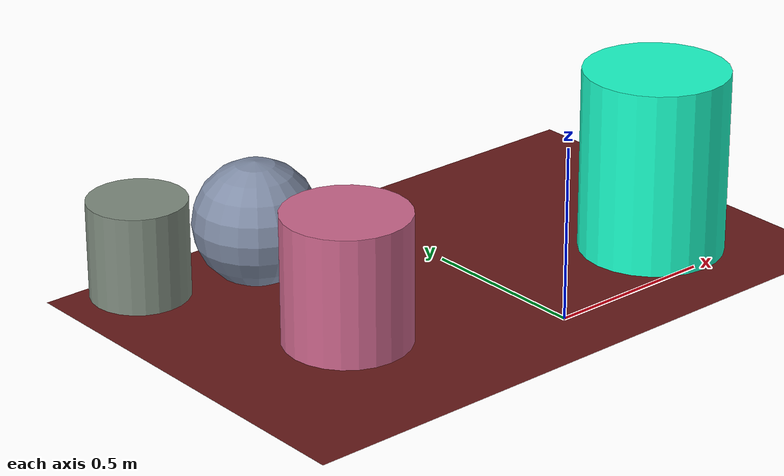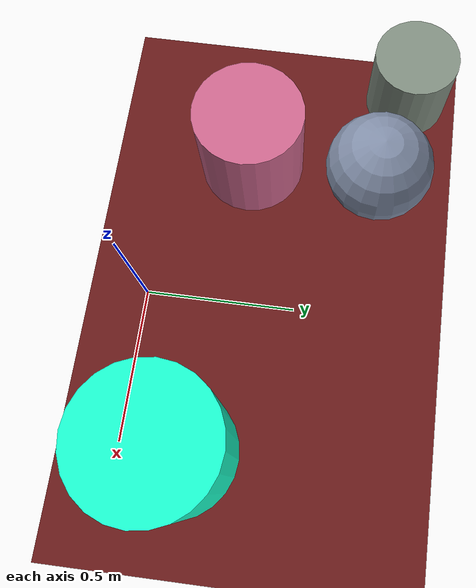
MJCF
<mujoco>
   <asset>
<texture type="skybox" builtin="gradient" rgb1="0.8 0.3 0.7" rgb2="0.8 0.1 0.2" width="256" height="256"/>
<texture name="flat_0" builtin="flat" rgb1="0.1 1.0 0.8" rgb2="0.1 1.0 0.8"  width="200" height="200"/>
<texture name="gradient_1" builtin="gradient" rgb1="1.0 0.6 0.7" rgb2="0.6 0.2 0.4" width="200" height="200"/>
<texture name="checker_2" builtin="checker" type="2d" rgb1="0.3 0.6 0.2" rgb2="0.7 0.5 0.8" width="200" height="200"/>
<texture name="gradient_3" builtin="gradient" rgb1="0.3 0.3 0.3" rgb2="0.7 0.8 1.0" width="200" height="200"/><material name="flat_0_mat" reflectance="1" texture="flat_0" texuniform="true"/>
<material name="gradient_1_mat" reflectance="1" texture="gradient_1" texuniform="true"/>
<material name="checker_2_mat" reflectance="0.9" texrepeat="2 2" texture="checker_2" texuniform="false" />
<material name="gradient_3_mat" reflectance="1" texture="gradient_3" texuniform="true"/>
   </asset>

   <worldbody>
      <light diffuse=".9 .9 .9" pos="0 0 3" dir="0 0 -1"/>
     <geom type="plane" size="1 1 0.1" rgba="0.4 0.1 0.1 1"/>
<geom type="cylinder" pos="0.51 0.18 0.27" size="0.21 0.27 0.27" material="flat_0_mat" />
<geom type="cylinder" pos="-0.52 0.29 0.18" size="0.18 0.19 0.18" material="gradient_1_mat" />
<geom type="cylinder" pos="-0.82 0.81 0.18" size="0.14 0.14 0.18" material="checker_2_mat" />
<geom type="sphere" pos="-0.48 0.73 0.18" size="0.18 0.18 0.18" material="gradient_3_mat" /><camera euler="60 0 180" fovy="60" name="camera_a" pos="0 -1.5 1"></camera>   </worldbody>
</mujoco>
